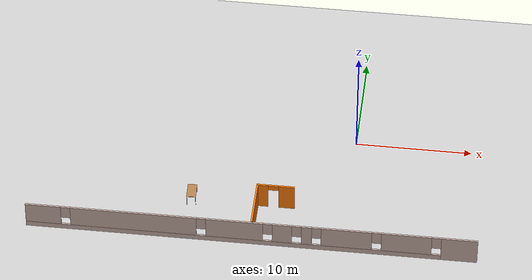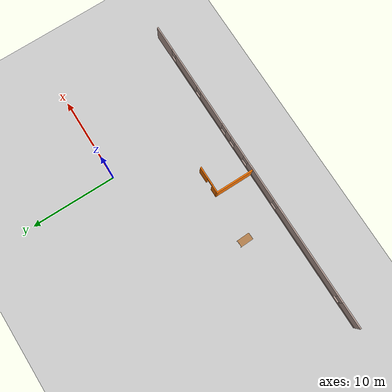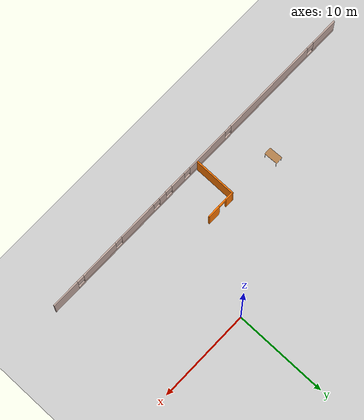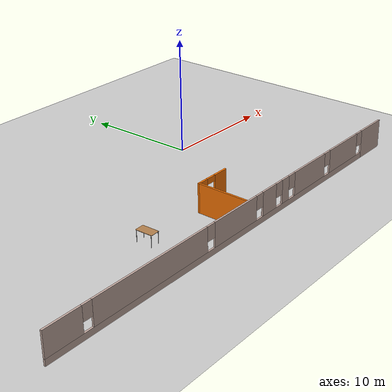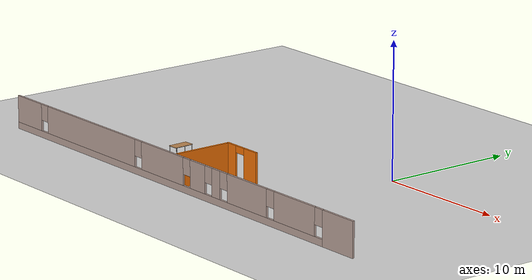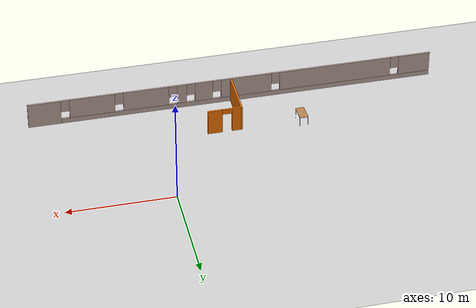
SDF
<sdf version="1.6">
 <world name="default">
  <model name="ground_plane">
   <static>1</static>
   <link name="link">
    <collision name="collision">
     <geometry><plane><normal>0 0 1</normal><size>100 100</size></plane></geometry>
     <surface><friction><ode><mu>100</mu><mu2>50</mu2></ode></friction></surface>
    </collision>
    <visual name="visual">
     <cast_shadows>0</cast_shadows>
     <geometry><plane><normal>0 0 1</normal><size>100 100</size></plane></geometry>
     <material>
      <script><uri>file://media/materials/scripts/gazebo.material</uri><name>Gazebo/Grey</name></script>
     </material>
    </visual>
   </link>
  </model>
  <model name="Building">
   <pose>-10.6691 -0.0294 0 0 -0 0</pose>
   <link name="Wall_161">
    <pose>2.8856 -12.8282 0 0 -0 3.14159</pose>
    <visual name="Wall_161_Visual_0">
     <pose>-17.595 0 1.25 0 -0 0</pose>
     <geometry><box><size>3.06004 0.15 2.5</size></box></geometry>
     <material>
      <script><uri>file://media/materials/scripts/gazebo.material</uri><name>Gazebo/Grey</name></script>
      <ambient>0.760784 0.662745 0.627451 1</ambient>
     </material>
     <meta><layer>0</layer></meta>
    </visual>
    <collision name="Wall_161_Collision_0">
     <geometry><box><size>3.06004 0.15 2.5</size></box></geometry>
     <pose>-17.595 0 1.25 0 -0 0</pose>
    </collision>
    <visual name="Wall_161_Visual_1">
     <pose>1.53002 0 0.25 0 -0 0</pose>
     <geometry><box><size>35.19 0.15 0.5</size></box></geometry>
     <material>
      <script><uri>file://media/materials/scripts/gazebo.material</uri><name>Gazebo/Grey</name></script>
      <ambient>0.760784 0.662745 0.627451 1</ambient>
     </material>
     <meta><layer>0</layer></meta>
    </visual>
    <collision name="Wall_161_Collision_1">
     <geometry><box><size>35.19 0.15 0.5</size></box></geometry>
     <pose>1.53002 0 0.25 0 -0 0</pose>
    </collision>
    <visual name="Wall_161_Visual_2">
     <pose>-13.1526 0 1.5 0 -0 0</pose>
     <geometry><box><size>4.22475 0.15 2</size></box></geometry>
     <material>
      <script><uri>file://media/materials/scripts/gazebo.material</uri><name>Gazebo/Grey</name></script>
      <ambient>0.760784 0.662745 0.627451 1</ambient>
     </material>
     <meta><layer>0</layer></meta>
    </visual>
    <collision name="Wall_161_Collision_2">
     <geometry><box><size>4.22475 0.15 2</size></box></geometry>
     <pose>-13.1526 0 1.5 0 -0 0</pose>
    </collision>
    <visual name="Wall_161_Visual_3">
     <pose>-8.105 0 1.5 0 -0 0</pose>
     <geometry><box><size>4.27041 0.15 2</size></box></geometry>
     <material>
      <script><uri>file://media/materials/scripts/gazebo.material</uri><name>Gazebo/Grey</name></script>
      <ambient>0.760784 0.662745 0.627451 1</ambient>
     </material>
     <meta><layer>0</layer></meta>
    </visual>
    <collision name="Wall_161_Collision_3">
     <geometry><box><size>4.27041 0.15 2</size></box></geometry>
     <pose>-8.105 0 1.5 0 -0 0</pose>
    </collision>
    <visual name="Wall_161_Visual_4">
     <pose>-4.73361 0 1.5 0 -0 0</pose>
     <geometry><box><size>0.872362 0.15 2</size></box></geometry>
     <material>
      <script><uri>file://media/materials/scripts/gazebo.material</uri><name>Gazebo/Grey</name></script>
      <ambient>0.760784 0.662745 0.627451 1</ambient>
     </material>
     <meta><layer>0</layer></meta>
    </visual>
    <collision name="Wall_161_Collision_4">
     <geometry><box><size>0.872362 0.15 2</size></box></geometry>
     <pose>-4.73361 0 1.5 0 -0 0</pose>
    </collision>
    <visual name="Wall_161_Visual_5">
     <pose>-2.66754 0 1.5 0 -0 0</pose>
     <geometry><box><size>1.65978 0.15 2</size></box></geometry>
     <material>
      <script><uri>file://media/materials/scripts/gazebo.material</uri><name>Gazebo/Grey</name></script>
      <ambient>0.760784 0.662745 0.627451 1</ambient>
     </material>
     <meta><layer>0</layer></meta>
    </visual>
    <collision name="Wall_161_Collision_5">
     <geometry><box><size>1.65978 0.15 2</size></box></geometry>
     <pose>-2.66754 0 1.5 0 -0 0</pose>
    </collision>
    <visual name="Wall_161_Visual_6">
     <pose>1.37416 0 1.5 0 -0 0</pose>
     <geometry><box><size>4.82362 0.15 2</size></box></geometry>
     <material>
      <script><uri>file://media/materials/scripts/gazebo.material</uri><name>Gazebo/Grey</name></script>
      <ambient>0.760784 0.662745 0.627451 1</ambient>
     </material>
     <meta><layer>0</layer></meta>
    </visual>
    <collision name="Wall_161_Collision_6">
     <geometry><box><size>4.82362 0.15 2</size></box></geometry>
     <pose>1.37416 0 1.5 0 -0 0</pose>
    </collision>
    <visual name="Wall_161_Visual_7">
     <pose>9.94407 0 1.5 0 -0 0</pose>
     <geometry><box><size>10.7162 0.15 2</size></box></geometry>
     <material>
      <script><uri>file://media/materials/scripts/gazebo.material</uri><name>Gazebo/Grey</name></script>
      <ambient>0.760784 0.662745 0.627451 1</ambient>
     </material>
     <meta><layer>0</layer></meta>
    </visual>
    <collision name="Wall_161_Collision_7">
     <geometry><box><size>10.7162 0.15 2</size></box></geometry>
     <pose>9.94407 0 1.5 0 -0 0</pose>
    </collision>
    <visual name="Wall_161_Visual_8">
     <pose>17.6136 0 1.5 0 -0 0</pose>
     <geometry><box><size>3.02283 0.15 2</size></box></geometry>
     <material>
      <script><uri>file://media/materials/scripts/gazebo.material</uri><name>Gazebo/Grey</name></script>
      <ambient>0.760784 0.662745 0.627451 1</ambient>
     </material>
     <meta><layer>0</layer></meta>
    </visual>
    <collision name="Wall_161_Collision_8">
     <geometry><box><size>3.02283 0.15 2</size></box></geometry>
     <pose>17.6136 0 1.5 0 -0 0</pose>
    </collision>
    <visual name="Wall_161_Visual_9">
     <pose>-15.665 0 1.9 0 -0 0</pose>
     <geometry><box><size>0.8 0.15 1.2</size></box></geometry>
     <material>
      <script><uri>file://media/materials/scripts/gazebo.material</uri><name>Gazebo/Grey</name></script>
      <ambient>0.760784 0.662745 0.627451 1</ambient>
     </material>
     <meta><layer>0</layer></meta>
    </visual>
    <collision name="Wall_161_Collision_9">
     <geometry><box><size>0.8 0.15 1.2</size></box></geometry>
     <pose>-15.665 0 1.9 0 -0 0</pose>
    </collision>
    <visual name="Wall_161_Visual_10">
     <pose>-10.6402 0 1.9 0 -0 0</pose>
     <geometry><box><size>0.8 0.15 1.2</size></box></geometry>
     <material>
      <script><uri>file://media/materials/scripts/gazebo.material</uri><name>Gazebo/Grey</name></script>
      <ambient>0.760784 0.662745 0.627451 1</ambient>
     </material>
     <meta><layer>0</layer></meta>
    </visual>
    <collision name="Wall_161_Collision_10">
     <geometry><box><size>0.8 0.15 1.2</size></box></geometry>
     <pose>-10.6402 0 1.9 0 -0 0</pose>
    </collision>
    <visual name="Wall_161_Visual_11">
     <pose>-5.56979 0 1.9 0 -0 0</pose>
     <geometry><box><size>0.8 0.15 1.2</size></box></geometry>
     <material>
      <script><uri>file://media/materials/scripts/gazebo.material</uri><name>Gazebo/Grey</name></script>
      <ambient>0.760784 0.662745 0.627451 1</ambient>
     </material>
     <meta><layer>0</layer></meta>
    </visual>
    <collision name="Wall_161_Collision_11">
     <geometry><box><size>0.8 0.15 1.2</size></box></geometry>
     <pose>-5.56979 0 1.9 0 -0 0</pose>
    </collision>
    <visual name="Wall_161_Visual_12">
     <pose>-3.89743 0 1.9 0 -0 0</pose>
     <geometry><box><size>0.8 0.15 1.2</size></box></geometry>
     <material>
      <script><uri>file://media/materials/scripts/gazebo.material</uri><name>Gazebo/Grey</name></script>
      <ambient>0.760784 0.662745 0.627451 1</ambient>
     </material>
     <meta><layer>0</layer></meta>
    </visual>
    <collision name="Wall_161_Collision_12">
     <geometry><box><size>0.8 0.15 1.2</size></box></geometry>
     <pose>-3.89743 0 1.9 0 -0 0</pose>
    </collision>
    <visual name="Wall_161_Visual_13">
     <pose>-1.43765 0 1.9 0 -0 0</pose>
     <geometry><box><size>0.8 0.15 1.2</size></box></geometry>
     <material>
      <script><uri>file://media/materials/scripts/gazebo.material</uri><name>Gazebo/Grey</name></script>
      <ambient>0.760784 0.662745 0.627451 1</ambient>
     </material>
     <meta><layer>0</layer></meta>
    </visual>
    <collision name="Wall_161_Collision_13">
     <geometry><box><size>0.8 0.15 1.2</size></box></geometry>
     <pose>-1.43765 0 1.9 0 -0 0</pose>
    </collision>
    <visual name="Wall_161_Visual_14">
     <pose>4.18597 0 1.9 0 -0 0</pose>
     <geometry><box><size>0.8 0.15 1.2</size></box></geometry>
     <material>
      <script><uri>file://media/materials/scripts/gazebo.material</uri><name>Gazebo/Grey</name></script>
      <ambient>0.760784 0.662745 0.627451 1</ambient>
     </material>
     <meta><layer>0</layer></meta>
    </visual>
    <collision name="Wall_161_Collision_14">
     <geometry><box><size>0.8 0.15 1.2</size></box></geometry>
     <pose>4.18597 0 1.9 0 -0 0</pose>
    </collision>
    <visual name="Wall_161_Visual_15">
     <pose>15.7022 0 1.9 0 -0 0</pose>
     <geometry><box><size>0.8 0.15 1.2</size></box></geometry>
     <material>
      <script><uri>file://media/materials/scripts/gazebo.material</uri><name>Gazebo/Grey</name></script>
      <ambient>0.760784 0.662745 0.627451 1</ambient>
     </material>
     <meta><layer>0</layer></meta>
    </visual>
    <collision name="Wall_161_Collision_15">
     <geometry><box><size>0.8 0.15 1.2</size></box></geometry>
     <pose>15.7022 0 1.9 0 -0 0</pose>
    </collision>
   </link>
   <link name="Wall_186">
    <pose>4.51377 -8.28672 0 0 -0 3.14159</pose>
    <visual name="Wall_186_Visual_0">
     <pose>-0.940765 0 1.25 0 -0 0</pose>
     <geometry><box><size>1.36847 0.15 2.5</size></box></geometry>
     <material>
      <script><uri>file://media/materials/scripts/gazebo.material</uri><name>Gazebo/Grey</name></script>
      <ambient>0.996078 0.47451 0.0196078 1</ambient>
     </material>
     <meta><layer>0</layer></meta>
    </visual>
    <collision name="Wall_186_Collision_0">
     <geometry><box><size>1.36847 0.15 2.5</size></box></geometry>
     <pose>-0.940765 0 1.25 0 -0 0</pose>
    </collision>
    <visual name="Wall_186_Visual_1">
     <pose>1.13424 0 1.25 0 -0 0</pose>
     <geometry><box><size>0.981529 0.15 2.5</size></box></geometry>
     <material>
      <script><uri>file://media/materials/scripts/gazebo.material</uri><name>Gazebo/Grey</name></script>
      <ambient>0.996078 0.47451 0.0196078 1</ambient>
     </material>
     <meta><layer>0</layer></meta>
    </visual>
    <collision name="Wall_186_Collision_1">
     <geometry><box><size>0.981529 0.15 2.5</size></box></geometry>
     <pose>1.13424 0 1.25 0 -0 0</pose>
    </collision>
    <visual name="Wall_186_Visual_2">
     <pose>0.193471 0 2.25 0 -0 0</pose>
     <geometry><box><size>0.9 0.15 0.5</size></box></geometry>
     <material>
      <script><uri>file://media/materials/scripts/gazebo.material</uri><name>Gazebo/Grey</name></script>
      <ambient>0.996078 0.47451 0.0196078 1</ambient>
     </material>
     <meta><layer>0</layer></meta>
    </visual>
    <collision name="Wall_186_Collision_2">
     <geometry><box><size>0.9 0.15 0.5</size></box></geometry>
     <pose>0.193471 0 2.25 0 -0 0</pose>
    </collision>
   </link>
   <link name="Wall_187">
    <collision name="Wall_187_Collision">
     <geometry><box><size>4.5 0.15 2.5</size></box></geometry>
     <pose>0 0 1.25 0 -0 0</pose>
    </collision>
    <visual name="Wall_187_Visual">
     <pose>0 0 1.25 0 -0 0</pose>
     <geometry><box><size>4.5 0.15 2.5</size></box></geometry>
     <material>
      <script><uri>file://media/materials/scripts/gazebo.material</uri><name>Gazebo/Grey</name></script>
      <ambient>0.996078 0.47451 0.0196078 1</ambient>
     </material>
     <meta><layer>0</layer></meta>
    </visual>
    <pose>2.96377 -10.4617 0 0 0 -1.5708</pose>
   </link>
   <static>1</static>
  </model>
  <model name="table_1_clone_clone_clone_1_clone_1">
   <static>1</static>
   <link name="link">
    <collision name="surface">
     <pose>0 0 1 0 -0 0</pose>
     <geometry><box><size>1.5 0.8 0.03</size></box></geometry>
     <surface><friction><ode><mu>0.6</mu><mu2>0.6</mu2></ode></friction></surface>
    </collision>
    <visual name="visual1">
     <pose>0 0 1 0 -0 0</pose>
     <geometry><box><size>1.5 0.8 0.03</size></box></geometry>
     <material>
      <script><uri>file://media/materials/scripts/gazebo.material</uri><name>Gazebo/Wood</name></script>
     </material>
    </visual>
    <collision name="front_left_leg">
     <pose>0.68 0.38 0.5 0 -0 0</pose>
     <geometry><cylinder><radius>0.02</radius><length>1</length></cylinder></geometry>
    </collision>
    <visual name="front_left_leg">
     <pose>0.68 0.38 0.5 0 -0 0</pose>
     <geometry><cylinder><radius>0.02</radius><length>1</length></cylinder></geometry>
     <material>
      <script><uri>file://media/materials/scripts/gazebo.material</uri><name>Gazebo/Grey</name></script>
     </material>
    </visual>
    <collision name="front_right_leg">
     <pose>0.68 -0.38 0.5 0 -0 0</pose>
     <geometry><cylinder><radius>0.02</radius><length>1</length></cylinder></geometry>
    </collision>
    <visual name="front_right_leg">
     <pose>0.68 -0.38 0.5 0 -0 0</pose>
     <geometry><cylinder><radius>0.02</radius><length>1</length></cylinder></geometry>
     <material>
      <script><uri>file://media/materials/scripts/gazebo.material</uri><name>Gazebo/Grey</name></script>
     </material>
    </visual>
    <collision name="back_right_leg">
     <pose>-0.68 -0.38 0.5 0 -0 0</pose>
     <geometry><cylinder><radius>0.02</radius><length>1</length></cylinder></geometry>
    </collision>
    <visual name="back_right_leg">
     <pose>-0.68 -0.38 0.5 0 -0 0</pose>
     <geometry><cylinder><radius>0.02</radius><length>1</length></cylinder></geometry>
     <material>
      <script><uri>file://media/materials/scripts/gazebo.material</uri><name>Gazebo/Grey</name></script>
     </material>
    </visual>
    <collision name="back_left_leg">
     <pose>-0.68 0.38 0.5 0 -0 0</pose>
     <geometry><cylinder><radius>0.02</radius><length>1</length></cylinder></geometry>
    </collision>
    <visual name="back_left_leg">
     <pose>-0.68 0.38 0.5 0 -0 0</pose>
     <geometry><cylinder><radius>0.02</radius><length>1</length></cylinder></geometry>
     <material>
      <script><uri>file://media/materials/scripts/gazebo.material</uri><name>Gazebo/Grey</name></script>
     </material>
    </visual>
   </link>
   <pose>-13.3576 -8.23142 0 0 -0 1.60797</pose>
  </model>
 </world>
</sdf>
